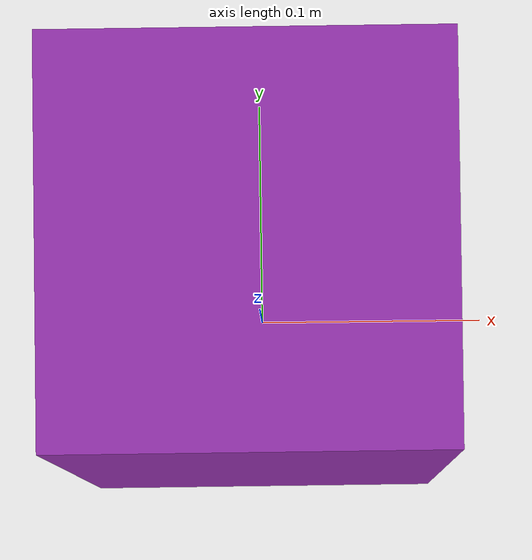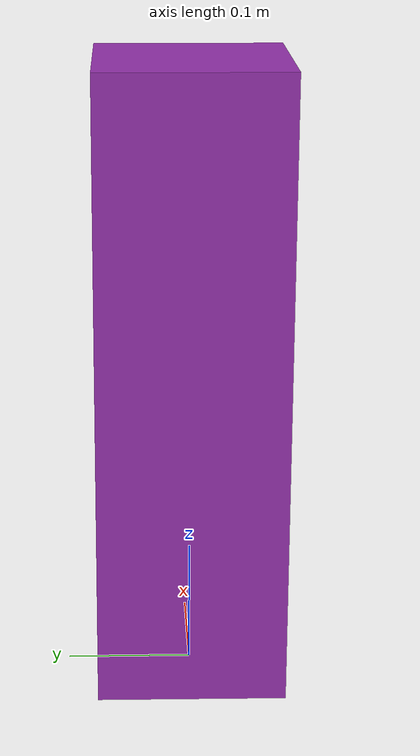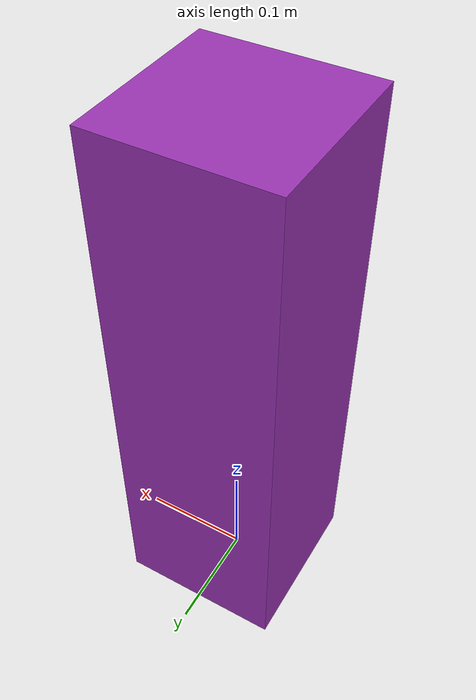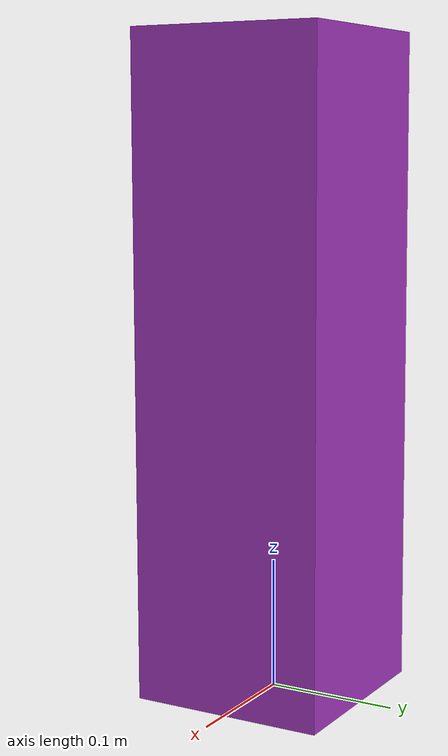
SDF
<?xml version="1.0" ?>
<sdf version="1.5">
  <model name="qr_pole">
    <static>true</static>
    <link name="link">
      <pose>0 0 0.25 0 0 0</pose>
      <collision name="collision">
        <geometry>
          <box>
            <size>0.15 0.15 0.5</size>
          </box>
        </geometry>
      </collision>
      <visual name="visual">
        <cast_shadows>false</cast_shadows>
        <geometry>
          <box>
            <size>0.15 0.15 0.5</size>
          </box>
        </geometry>
        <material>
          <script>
            <uri>file://media/materials/scripts/gazebo.material</uri>
            <name>Gazebo/Purple</name>
          </script>
        </material>
      </visual>
    </link>
  </model>
</sdf>
